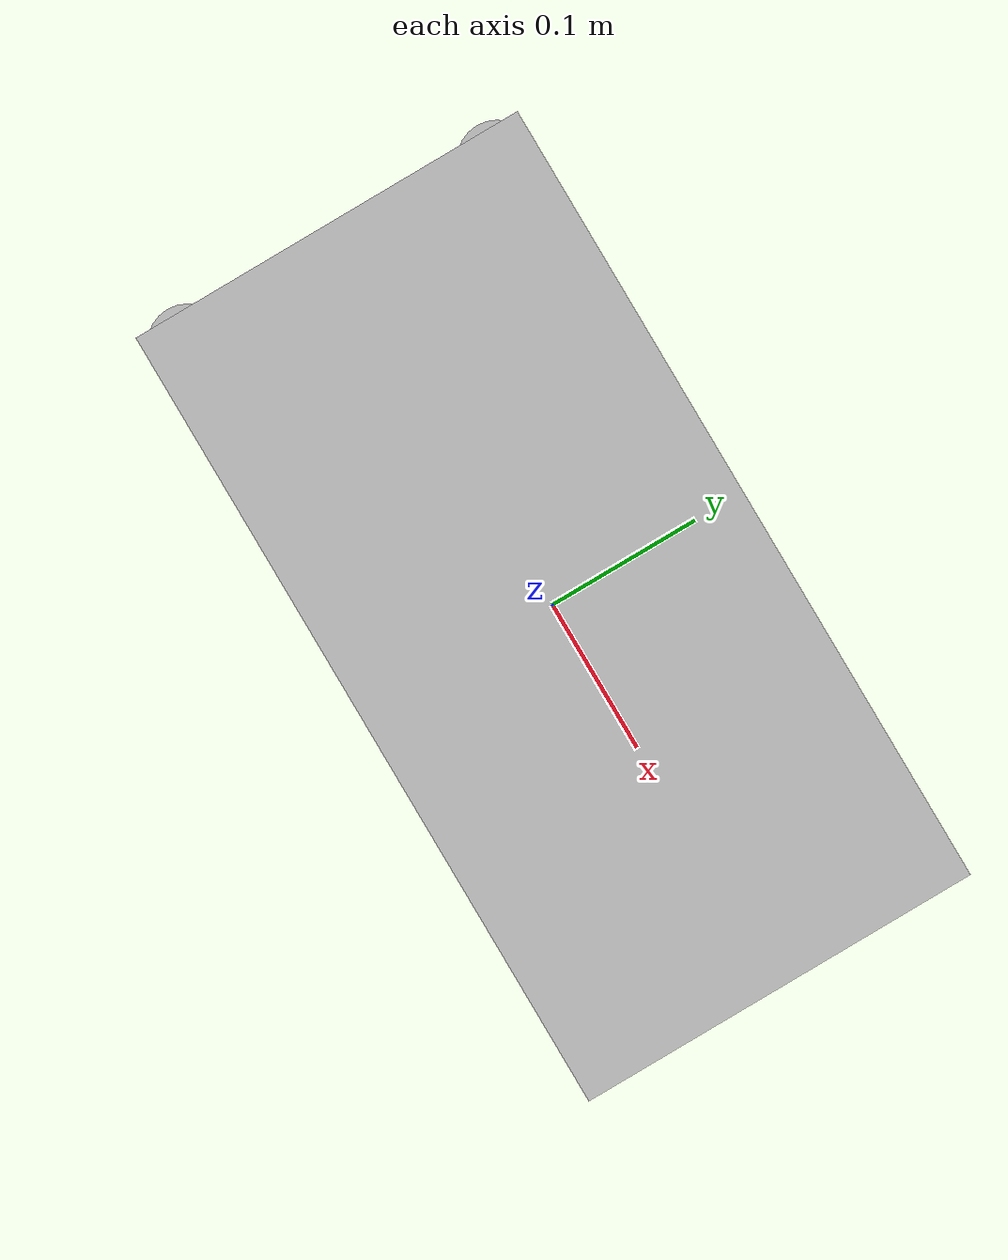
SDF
<?xml version="1.0"?>
<sdf version="1.10">
  <model name="karaburan">
    <static>false</static>
    <pose>0 0 0 0 0 0</pose>

    <link name="hull">
      <collision name="hull_col">
        <geometry><box><size>0.5 0.25 0.13</size></box></geometry>
        <pose>0 0 0.065 0 0 0</pose>
      </collision>
      <visual name="hull_vis">
        <geometry><box><size>0.5 0.25 0.13</size></box></geometry>
        <pose>0 0 0.065 0 0 0</pose>
      </visual>

      <!-- Ballasted displacement hull: the centre of mass is below the
           centre of buoyancy so a gentle yaw turn produces little heel. -->
      <inertial>
        <pose>0 0 -0.05 0 0 0</pose>
        <mass>2.0</mass>
        <inertia>
          <ixx>0.0666667</ixx>
          <iyy>0.1333333</iyy>
          <izz>0.1733333</izz>
          <ixy>0</ixy><ixz>0</ixz><iyz>0</iyz>
        </inertia>
      </inertial>
      <velocity_decay>
        <linear>0.02</linear>
        <angular>0.15</angular>
      </velocity_decay>

      <sensor name="imu_sensor" type="imu">
        <gz_frame_id>imu_link</gz_frame_id>
        <always_on>1</always_on>
        <update_rate>30</update_rate>
        <visualize>false</visualize>
	<topic>/imu/data</topic>
      </sensor>
      <sensor name="gps_sensor" type="navsat">
        <gz_frame_id>gps_link</gz_frame_id>
        <always_on>1</always_on>
        <update_rate>5</update_rate>
	<topic>/fix/valid</topic>
      </sensor>
      <!-- 2D LiDAR -->
      <sensor name="lidar_sensor" type="gpu_lidar">
        <pose>0 0 0.155 0 0 0</pose>
        <gz_frame_id>lidar_link</gz_frame_id>
        <topic>/scan</topic>
        <update_rate>10</update_rate>
        <lidar>
          <scan>
            <horizontal>
              <samples>720</samples>
              <resolution>1</resolution>
              <!-- A rotating marine lidar observes reverse clearance too. -->
              <min_angle>-3.141593</min_angle>
              <max_angle> 3.141593</max_angle>
            </horizontal>
            <vertical>
              <samples>1</samples>
              <resolution>1</resolution>
              <min_angle>0</min_angle>
              <max_angle>0</max_angle>
            </vertical>
          </scan>
          <range>
            <min>0.1</min>
            <max>50.0</max>
            <resolution>0.01</resolution>
          </range>
        </lidar>
        <always_on>1</always_on>
        <visualize>true</visualize>
      </sensor>
    </link>

      <!-- LEFT PROPELLER (link + joint) -->
  <link name="left_prop">
    <inertial>
      <pose>0 0 0 0 0 0</pose>
      <mass>0.05</mass>
      <inertia>
        <ixx>1e-5</ixx><iyy>1e-5</iyy><izz>1e-5</izz>
        <ixy>0</ixy><ixz>0</ixz><iyz>0</iyz>
      </inertia>
    </inertial>
    <visual name="left_prop_vis">
      <geometry><cylinder><radius>0.025</radius><length>0.02</length></cylinder></geometry>
      <!-- Behind the hull and below the waterline, near the vertical COM. -->
      <pose>-0.25 0.11 -0.04 0 0 0</pose>
    </visual>
    <!-- GEEN collision -> geen extra drijfkracht -->
  </link>

  <joint name="left_prop_joint" type="revolute">
    <parent>hull</parent>
    <child>left_prop</child>
    <!-- as = +X in child-frame: “vooruit” is +thrust -->
    <pose>-0.25 0.11 -0.04 0 0 0</pose>
    <axis>
      <xyz>1 0 0</xyz>
      <limit><lower>-1e16</lower><upper>1e16</upper></limit>
    </axis>
  </joint>

  <!-- RIGHT PROPELLER -->
  <link name="right_prop">
    <inertial>
      <pose>0 0 0 0 0 0</pose>
      <mass>0.05</mass>
      <inertia>
        <ixx>1e-5</ixx><iyy>1e-5</iyy><izz>1e-5</izz>
        <ixy>0</ixy><ixz>0</ixz><iyz>0</iyz>
      </inertia>
    </inertial>
    <visual name="right_prop_vis">
      <geometry><cylinder><radius>0.025</radius><length>0.02</length></cylinder></geometry>
      <pose>-0.25 -0.11 -0.04 0 0 0</pose>
    </visual>
  </link>

  <joint name="right_prop_joint" type="revolute">
    <parent>hull</parent>
    <child>right_prop</child>
    <pose>-0.25 -0.11 -0.04 0 0 0</pose>
    <axis>
      <xyz>1 0 0</xyz>
      <limit><lower>-1e16</lower><upper>1e16</upper></limit>
    </axis>
  </joint>

  <!-- Thruster plugins: 1 per joint -->
  <plugin filename="gz-sim-thruster-system" name="gz::sim::systems::Thruster">
    <namespace>karaburan</namespace>
    <joint_name>left_prop_joint</joint_name>
    <fluid_density>1000</fluid_density>
    <propeller_diameter>0.05</propeller_diameter>
    <thrust_coefficient>0.004422</thrust_coefficient>
    <velocity_control>true</velocity_control>
  </plugin>

  <plugin filename="gz-sim-thruster-system" name="gz::sim::systems::Thruster">
    <namespace>karaburan</namespace>
    <joint_name>right_prop_joint</joint_name>
    <fluid_density>1000</fluid_density>
    <propeller_diameter>0.05</propeller_diameter>
    <thrust_coefficient>0.004422</thrust_coefficient>
    <velocity_control>true</velocity_control>
  </plugin>

    <plugin name="gz::sim::systems::Hydrodynamics" filename="gz-sim-hydrodynamics-system">
      <link_name>hull</link_name>
      <water_density>998</water_density>
      <disable_coriolis>true</disable_coriolis>
      <disable_added_mass>true</disable_added_mass>

      <xDotU>0</xDotU> <yDotV>0</yDotV> <zDotW>0</zDotW>
      <kDotP>0</kDotP> <mDotQ>0</mDotQ> <nDotR>0</nDotR>

      <xU>-2.0</xU>  <yV>-3.0</yV>  <zW>-80.0</zW>

      <xUabsU>-0.6</xUabsU>  <yVabsV>-1.0</yVabsV>  <zWabsW>-9.0</zWabsW>

      <kP>-12.0</kP>     <kPabsP>-30.0</kPabsP>   <!-- roll -->
      <mQ>-4.0</mQ>      <mQabsQ>-10.0</mQabsQ>   <!-- pitch -->
      <nR>-2.0</nR>      <nRabsR>-3.0</nRabsR>   <!-- yaw -->
    </plugin>
  </model>
</sdf>
